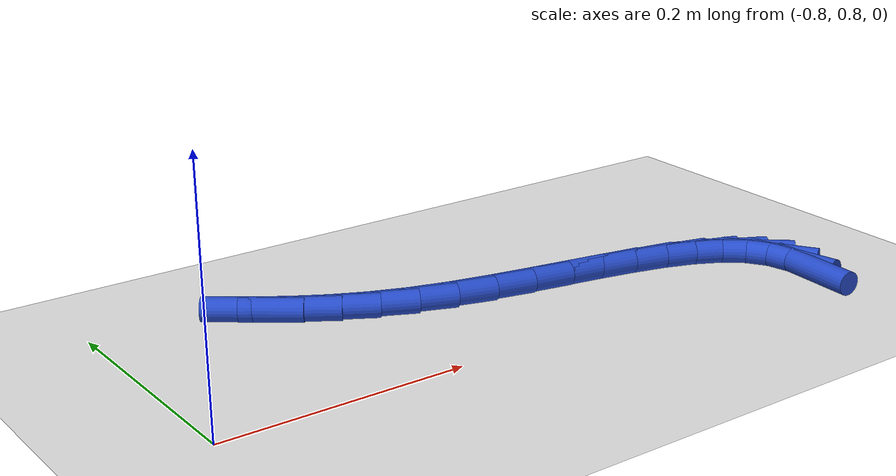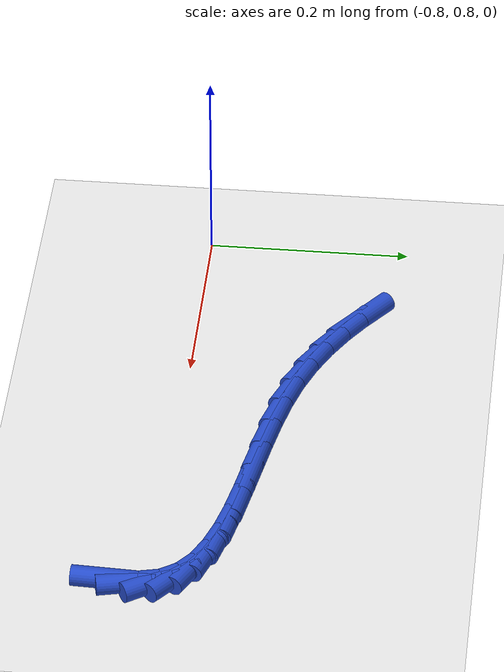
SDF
<sdf version="1.6">
 <world name="default">
  <model name="ground_plane">
   <static>1</static>
   <link name="link">
    <collision name="collision">
     <geometry><plane><normal>0 0 1</normal><size>100 100</size></plane></geometry>
     <surface><friction><ode><mu>100</mu><mu2>50</mu2></ode></friction></surface>
    </collision>
    <visual name="visual">
     <cast_shadows>0</cast_shadows>
     <geometry><plane><normal>0 0 1</normal><size>100 100</size></plane></geometry>
     <material>
      <script><uri>file://media/materials/scripts/gazebo.material</uri><name>Gazebo/WhiteGlow</name></script>
     </material>
    </visual>
   </link>
  </model>
  <model name="line">
   <link name="link_31">
    <pose>-0.2705586972476563 0.7636087998447827 0.01 0 1.57 1.5239744548455967</pose>
    <collision name="collision">
     <geometry><cylinder><radius>0.01</radius><length>0.08</length></cylinder></geometry>
    </collision>
    <visual name="visual">
     <material>
      <script><name>Gazebo/Blue</name><uri>file://media/materials/scripts/gazebo.material</uri></script>
     </material>
     <geometry><cylinder><radius>0.01</radius><length>0.08</length></cylinder></geometry>
    </visual>
   </link>
   <link name="link_32">
    <pose>-0.269452785875934 0.787211083327809 0.01 0 1.57 -1.3485402495209033</pose>
    <collision name="collision">
     <geometry><cylinder><radius>0.01</radius><length>0.08</length></cylinder></geometry>
    </collision>
    <visual name="visual">
     <material>
      <script><name>Gazebo/Blue</name><uri>file://media/materials/scripts/gazebo.material</uri></script>
     </material>
     <geometry><cylinder><radius>0.01</radius><length>0.08</length></cylinder></geometry>
    </visual>
   </link>
   <link name="link_33">
    <pose>-0.2740422774299361 0.8075195102532613 0.01 0 1.57 -0.9907491317451966</pose>
    <collision name="collision">
     <geometry><cylinder><radius>0.01</radius><length>0.08</length></cylinder></geometry>
    </collision>
    <visual name="visual">
     <material>
      <script><name>Gazebo/Blue</name><uri>file://media/materials/scripts/gazebo.material</uri></script>
     </material>
     <geometry><cylinder><radius>0.01</radius><length>0.08</length></cylinder></geometry>
    </visual>
   </link>
   <link name="link_34">
    <pose>-0.28500318793580537 0.8242476999573504 0.01 0 1.57 -0.6831482211758472</pose>
    <collision name="collision">
     <geometry><cylinder><radius>0.01</radius><length>0.08</length></cylinder></geometry>
    </collision>
    <visual name="visual">
     <material>
      <script><name>Gazebo/Blue</name><uri>file://media/materials/scripts/gazebo.material</uri></script>
     </material>
     <geometry><cylinder><radius>0.01</radius><length>0.08</length></cylinder></geometry>
    </visual>
   </link>
   <link name="link_35">
    <pose>-0.3016941105527869 0.8378321352619525 0.01 0 1.57 -0.46987348821937597</pose>
    <collision name="collision">
     <geometry><cylinder><radius>0.01</radius><length>0.08</length></cylinder></geometry>
    </collision>
    <visual name="visual">
     <material>
      <script><name>Gazebo/Blue</name><uri>file://media/materials/scripts/gazebo.material</uri></script>
     </material>
     <geometry><cylinder><radius>0.01</radius><length>0.08</length></cylinder></geometry>
    </visual>
   </link>
   <link name="link_36">
    <pose>-0.3233007778020779 0.8488041467758555 0.01 0 1.57 -0.3329644847193989</pose>
    <collision name="collision">
     <geometry><cylinder><radius>0.01</radius><length>0.08</length></cylinder></geometry>
    </collision>
    <visual name="visual">
     <material>
      <script><name>Gazebo/Blue</name><uri>file://media/materials/scripts/gazebo.material</uri></script>
     </material>
     <geometry><cylinder><radius>0.01</radius><length>0.08</length></cylinder></geometry>
    </visual>
   </link>
   <link name="link_37">
    <pose>-0.34900892220487634 0.857695065107848 0.01 0 1.57 -0.24797298807616366</pose>
    <collision name="collision">
     <geometry><cylinder><radius>0.01</radius><length>0.08</length></cylinder></geometry>
    </collision>
    <visual name="visual">
     <material>
      <script><name>Gazebo/Blue</name><uri>file://media/materials/scripts/gazebo.material</uri></script>
     </material>
     <geometry><cylinder><radius>0.01</radius><length>0.08</length></cylinder></geometry>
    </visual>
   </link>
   <link name="link_38">
    <pose>-0.37800427628237915 0.8650362208667182 0.01 0 1.57 -0.1982834917036327</pose>
    <collision name="collision">
     <geometry><cylinder><radius>0.01</radius><length>0.08</length></cylinder></geometry>
    </collision>
    <visual name="visual">
     <material>
      <script><name>Gazebo/Blue</name><uri>file://media/materials/scripts/gazebo.material</uri></script>
     </material>
     <geometry><cylinder><radius>0.01</radius><length>0.08</length></cylinder></geometry>
    </visual>
   </link>
   <link name="link_39">
    <pose>-0.4094725725557843 0.871358944661254 0.01 0 1.57 -0.1743702497080753</pose>
    <collision name="collision">
     <geometry><cylinder><radius>0.01</radius><length>0.08</length></cylinder></geometry>
    </collision>
    <visual name="visual">
     <material>
      <script><name>Gazebo/Blue</name><uri>file://media/materials/scripts/gazebo.material</uri></script>
     </material>
     <geometry><cylinder><radius>0.01</radius><length>0.08</length></cylinder></geometry>
    </visual>
   </link>
   <link name="link_40">
    <pose>-0.4425995435462888 0.8771945671002439 0.01 0 1.57 -0.1713845588244232</pose>
    <collision name="collision">
     <geometry><cylinder><radius>0.01</radius><length>0.08</length></cylinder></geometry>
    </collision>
    <visual name="visual">
     <material>
      <script><name>Gazebo/Blue</name><uri>file://media/materials/scripts/gazebo.material</uri></script>
     </material>
     <geometry><cylinder><radius>0.01</radius><length>0.08</length></cylinder></geometry>
    </visual>
   </link>
   <link name="link_41">
    <pose>-0.4765709217750905 0.8830744187924763 0.01 0 1.57 -0.1876235095575148</pose>
    <collision name="collision">
     <geometry><cylinder><radius>0.01</radius><length>0.08</length></cylinder></geometry>
    </collision>
    <visual name="visual">
     <material>
      <script><name>Gazebo/Blue</name><uri>file://media/materials/scripts/gazebo.material</uri></script>
     </material>
     <geometry><cylinder><radius>0.01</radius><length>0.08</length></cylinder></geometry>
    </visual>
   </link>
   <link name="link_42">
    <pose>-0.5105724397633867 0.8895298303467392 0.01 0 1.57 -0.22384570779319432</pose>
    <collision name="collision">
     <geometry><cylinder><radius>0.01</radius><length>0.08</length></cylinder></geometry>
    </collision>
    <visual name="visual">
     <material>
      <script><name>Gazebo/Blue</name><uri>file://media/materials/scripts/gazebo.material</uri></script>
     </material>
     <geometry><cylinder><radius>0.01</radius><length>0.08</length></cylinder></geometry>
    </visual>
   </link>
   <link name="link_43">
    <pose>-0.5437898300323747 0.8970921323718206 0.01 0 1.57 -0.2831619745207348</pose>
    <collision name="collision">
     <geometry><cylinder><radius>0.01</radius><length>0.08</length></cylinder></geometry>
    </collision>
    <visual name="visual">
     <material>
      <script><name>Gazebo/Blue</name><uri>file://media/materials/scripts/gazebo.material</uri></script>
     </material>
     <geometry><cylinder><radius>0.01</radius><length>0.08</length></cylinder></geometry>
    </visual>
   </link>
   <link name="link_44">
    <pose>-0.5754088251032525 0.9062926554765094 0.01 0 1.57 -0.36552655215878593</pose>
    <collision name="collision">
     <geometry><cylinder><radius>0.01</radius><length>0.08</length></cylinder></geometry>
    </collision>
    <visual name="visual">
     <material>
      <script><name>Gazebo/Blue</name><uri>file://media/materials/scripts/gazebo.material</uri></script>
     </material>
     <geometry><cylinder><radius>0.01</radius><length>0.08</length></cylinder></geometry>
    </visual>
   </link>
   <link name="link_45">
    <pose>-0.6047886409805884 0.9175370636598086 0.01 0 1.57 -0.4501227859402464</pose>
    <collision name="collision">
     <geometry><cylinder><radius>0.01</radius><length>0.08</length></cylinder></geometry>
    </collision>
    <visual name="visual">
     <material>
      <script><name>Gazebo/Blue</name><uri>file://media/materials/scripts/gazebo.material</uri></script>
     </material>
     <geometry><cylinder><radius>0.01</radius><length>0.08</length></cylinder></geometry>
    </visual>
   </link>
   <link name="link_46">
    <pose>-0.6320247238511203 0.9306977162555383 0.01 0 1.57 -0.528104487492749</pose>
    <collision name="collision">
     <geometry><cylinder><radius>0.01</radius><length>0.08</length></cylinder></geometry>
    </collision>
    <visual name="visual">
     <material>
      <script><name>Gazebo/Blue</name><uri>file://media/materials/scripts/gazebo.material</uri></script>
     </material>
     <geometry><cylinder><radius>0.01</radius><length>0.08</length></cylinder></geometry>
    </visual>
   </link>
   <link name="link_47">
    <pose>-0.6574077881415934 0.9455055257159847 0.01 0 1.57 -0.5968252054183288</pose>
    <collision name="collision">
     <geometry><cylinder><radius>0.01</radius><length>0.08</length></cylinder></geometry>
    </collision>
    <visual name="visual">
     <material>
      <script><name>Gazebo/Blue</name><uri>file://media/materials/scripts/gazebo.material</uri></script>
     </material>
     <geometry><cylinder><radius>0.01</radius><length>0.08</length></cylinder></geometry>
    </visual>
   </link>
   <link name="link_48">
    <pose>-0.6812285496905248 0.9616914034707866 0.01 0 1.57 -0.6542825904733287</pose>
    <collision name="collision">
     <geometry><cylinder><radius>0.01</radius><length>0.08</length></cylinder></geometry>
    </collision>
    <visual name="visual">
     <material>
      <script><name>Gazebo/Blue</name><uri>file://media/materials/scripts/gazebo.material</uri></script>
     </material>
     <geometry><cylinder><radius>0.01</radius><length>0.08</length></cylinder></geometry>
    </visual>
   </link>
  </model>
 </world>
</sdf>
